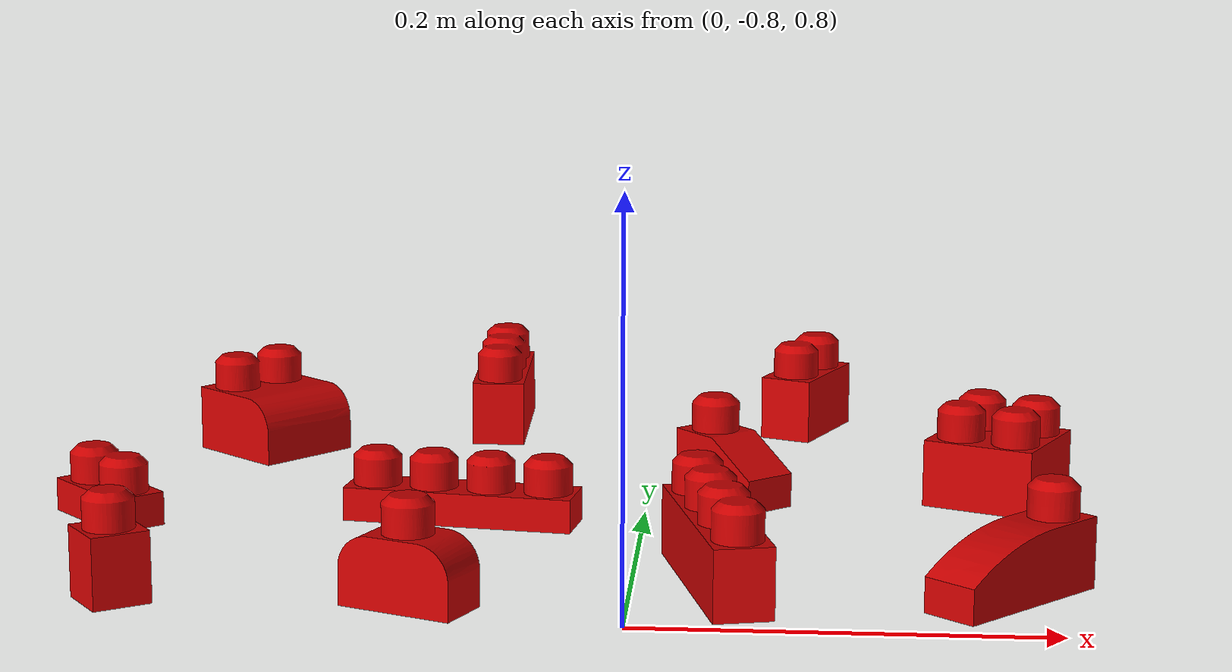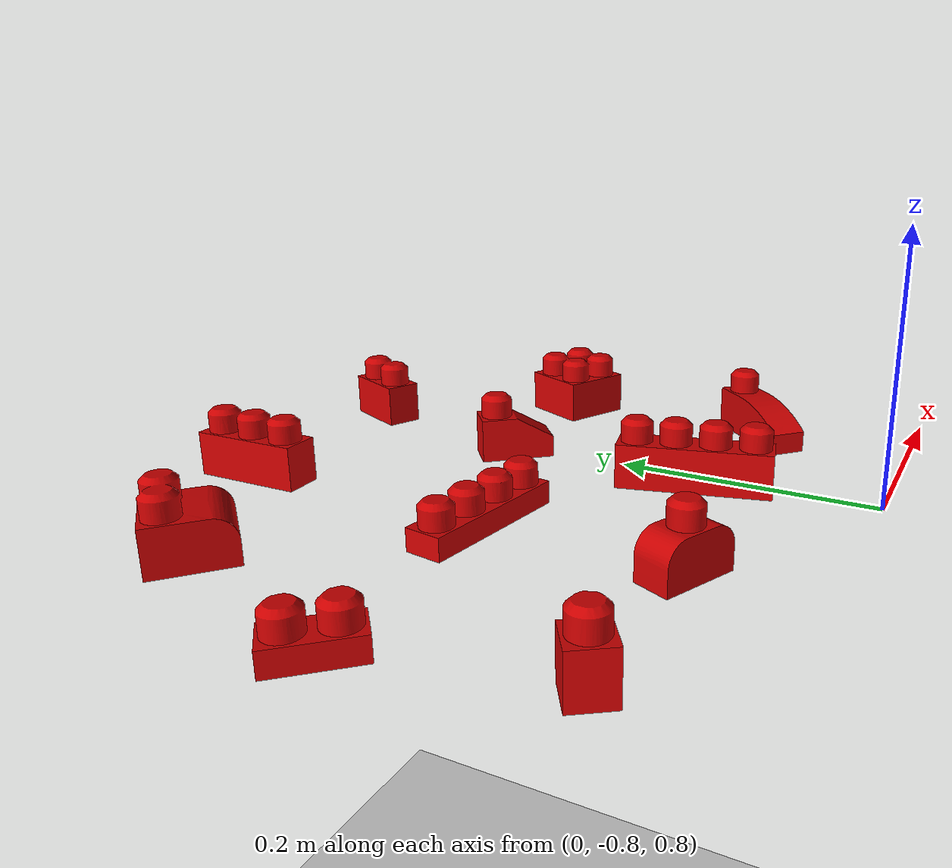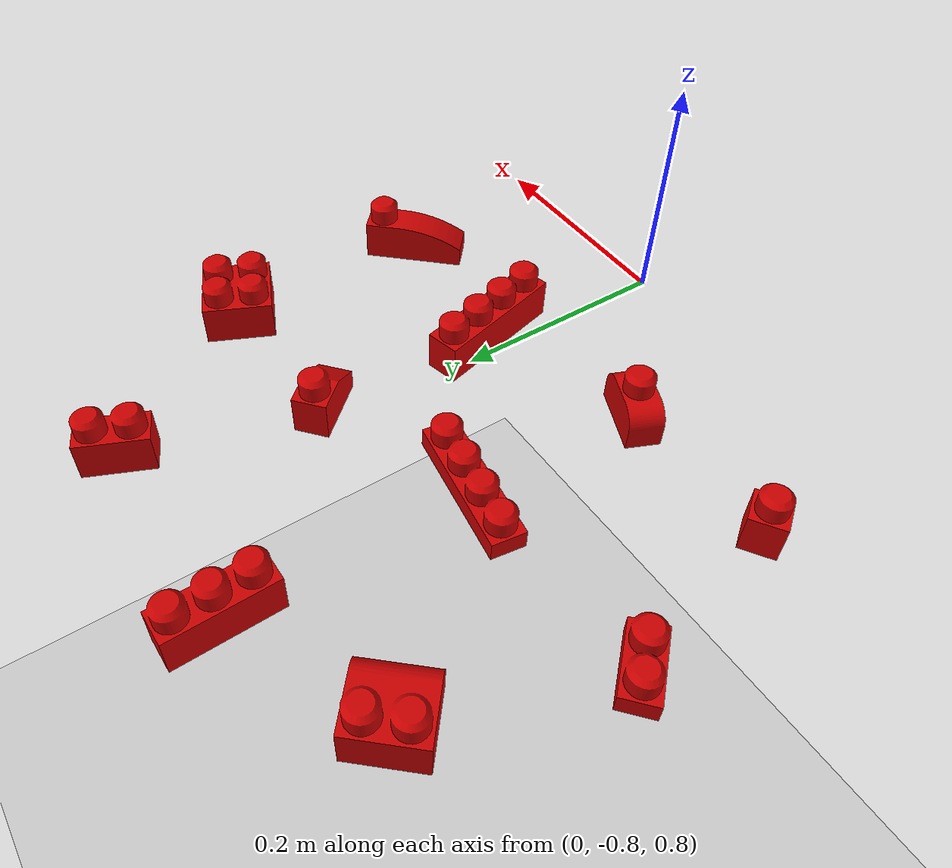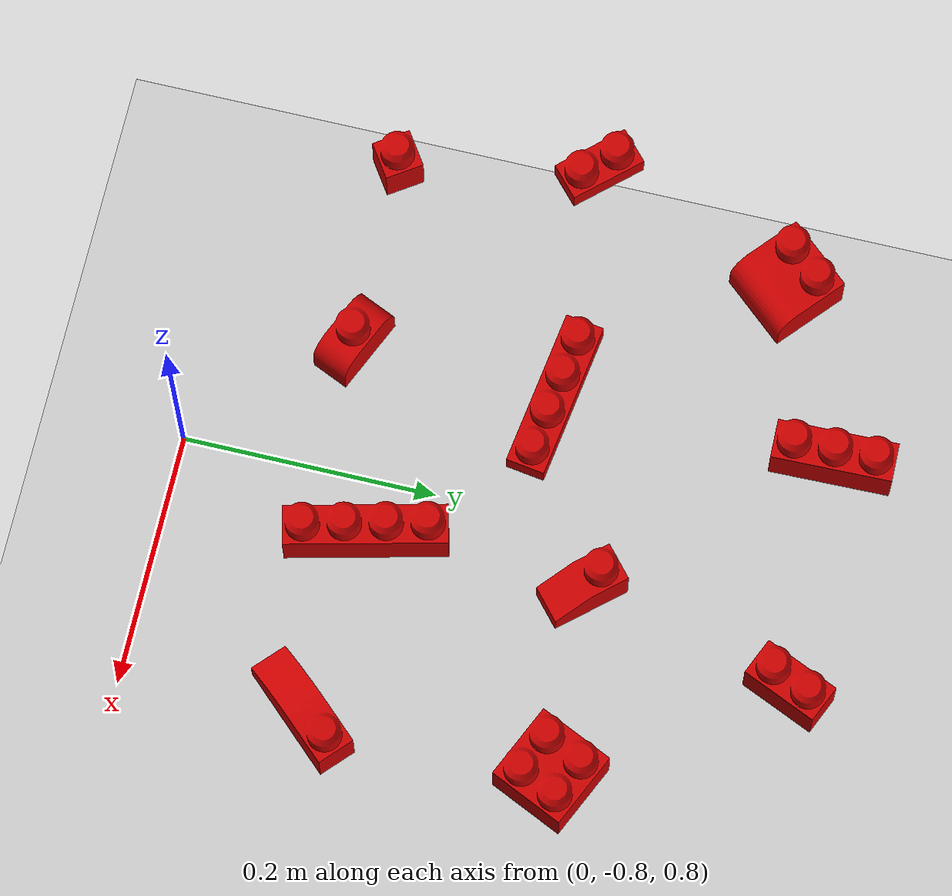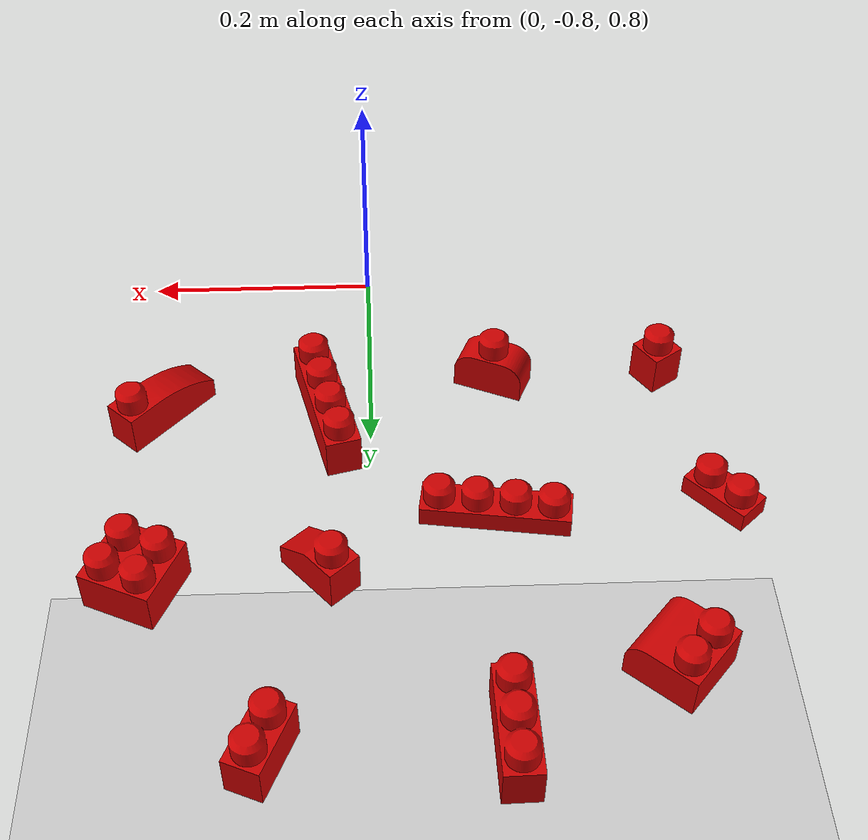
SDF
<sdf version="1.7">
 <world name="base">
  <plugin name="ros_link_attacher_plugin" filename="libgazebo_ros_link_attacher.so"/>
  <gravity>0 0 -9.81</gravity>
  <physics name="default_physics" default="0" type="ode">
   <max_step_size>0.001</max_step_size>
   <real_time_factor>1</real_time_factor>
   <real_time_update_rate>1000</real_time_update_rate>
  </physics>
  <scene><ambient>0.4 0.4 0.4 1</ambient><background>0.7 0.7 0.7 1</background><shadows>1</shadows></scene>
  <light name="sun" type="directional">
   <cast_shadows>0</cast_shadows>
   <pose>0 0 10 0 -0 0</pose>
   <diffuse>0.8 0.8 0.8 1</diffuse>
   <specular>0.2 0.2 0.2 1</specular>
   <attenuation>
    <range>1000</range>
    <constant>0.9</constant>
    <linear>0.01</linear>
    <quadratic>0.001</quadratic>
   </attenuation>
   <direction>-0.5 0.1 -0.9</direction>
   <spot><inner_angle>0</inner_angle><outer_angle>0</outer_angle><falloff>0</falloff></spot>
  </light>
  <model name="ground_plane">
   <static>1</static>
   <link name="link">
    <collision name="collision">
     <geometry><plane><normal>0 0 1</normal><size>100 100</size></plane></geometry>
     <surface>
      <contact><collide_bitmask>65535</collide_bitmask></contact>
      <friction><ode><mu>100</mu><mu2>50</mu2></ode></friction>
     </surface>
    </collision>
    <visual name="visual">
     <cast_shadows>0</cast_shadows>
     <geometry><plane><normal>0 0 1</normal><size>100 100</size></plane></geometry>
     <material>
      <script><uri>file://media/materials/scripts/gazebo.material</uri><name>Gazebo/Grey</name></script>
     </material>
    </visual>
   </link>
  </model>
  <model name="lego_X1-Y2-Z2-CHAMFER">
   <link name="link">
    <inertial>
     <pose>3e-06 0.004887 -0.003924 0 -0 0</pose>
     <mass>0.118122</mass>
     <inertia>
      <ixx>7.11254e-05</ixx>
      <ixy>-2.81765e-09</ixy>
      <ixz>-6.76974e-09</ixz>
      <iyy>4.35864e-05</iyy>
      <iyz>-1.07802e-05</iyz>
      <izz>5.92481e-05</izz>
     </inertia>
    </inertial>
    <collision name="collision">
     <geometry>
      <mesh><scale>1 1 1</scale><uri>model://lego_X1-Y2-Z2-CHAMFER/meshes/X1-Y2-Z2-CHAMFER.stl</uri></mesh>
     </geometry>
     <surface>
      <contact><ode><max_vel>0.01</max_vel><min_depth>0</min_depth><mu>0.1</mu><mu2>0.1</mu2></ode></contact>
      <bounce><restitution_coefficient>0</restitution_coefficient><threshold>1e+06</threshold></bounce>
     </surface>
    </collision>
    <visual name="visual">
     <geometry>
      <mesh><scale>1 1 1</scale><uri>model://lego_X1-Y2-Z2-CHAMFER/meshes/X1-Y2-Z2-CHAMFER.stl</uri></mesh>
     </geometry>
     <material>
      <script><uri>file://media/materials/scripts/gazebo.material</uri><name>Gazebo/Grey</name></script>
      <shader type="vertex"><normal_map>__default__</normal_map></shader>
      <ambient>0.8 0 0 1</ambient>
      <diffuse>0.7 0.7 0.7 1</diffuse>
      <specular>0.01 0.01 0.01 1</specular>
      <emissive>0 0 0 1</emissive>
     </material>
    </visual>
   </link>
   <pose>0.042805 -0.474774 0.8035 4.3e-05 3.4e-05 0.7188</pose>
  </model>
  <model name="lego_X1-Y2-Z2">
   <link name="link">
    <inertial>
     <pose>1e-06 7e-06 0.000398 0 -0 0</pose>
     <mass>0.146868</mass>
     <inertia>
      <ixx>0.000100644</ixx>
      <ixy>-2.20574e-09</ixy>
      <ixz>6.78532e-10</ixz>
      <iyy>5.89081e-05</iyy>
      <iyz>-2.30188e-08</iyz>
      <izz>7.98702e-05</izz>
     </inertia>
    </inertial>
    <collision name="collision">
     <geometry><mesh><scale>1 1 1</scale><uri>model://lego_X1-Y2-Z2/meshes/X1-Y2-Z2.stl</uri></mesh></geometry>
     <surface>
      <contact><ode><max_vel>0.01</max_vel><min_depth>0</min_depth><mu>0.1</mu><mu2>0.1</mu2></ode></contact>
      <bounce><restitution_coefficient>0</restitution_coefficient><threshold>1e+06</threshold></bounce>
     </surface>
    </collision>
    <visual name="visual">
     <geometry><mesh><scale>1 1 1</scale><uri>model://lego_X1-Y2-Z2/meshes/X1-Y2-Z2.stl</uri></mesh></geometry>
     <material>
      <script><uri>file://media/materials/scripts/gazebo.material</uri><name>Gazebo/Grey</name></script>
      <shader type="vertex"><normal_map>__default__</normal_map></shader>
      <ambient>0.8 0 0 1</ambient>
      <diffuse>0.7 0.7 0.7 1</diffuse>
      <specular>0.01 0.01 0.01 1</specular>
      <emissive>0 0 0 1</emissive>
     </material>
    </visual>
   </link>
   <pose>0.083353 -0.303881 0.803496 -0.000123 -5.2e-05 -0.409418</pose>
  </model>
  <model name="lego_X1-Y2-Z1">
   <link name="link">
    <inertial>
     <pose>-2e-06 -1.3e-05 7.6e-05 0 -0 0</pose>
     <mass>0.0996487</mass>
     <inertia>
      <ixx>5.10576e-05</ixx>
      <ixy>-2.19745e-09</ixy>
      <ixz>5.98298e-09</ixz>
      <iyy>2.36483e-05</iyy>
      <iyz>1.68164e-08</iyz>
      <izz>5.02663e-05</izz>
     </inertia>
    </inertial>
    <collision name="collision">
     <geometry><mesh><scale>1 1 1</scale><uri>model://lego_X1-Y2-Z1/meshes/X1-Y2-Z1.stl</uri></mesh></geometry>
     <surface>
      <contact><ode><max_vel>0.01</max_vel><min_depth>0</min_depth><mu>0.1</mu><mu2>0.1</mu2></ode></contact>
      <bounce><restitution_coefficient>0</restitution_coefficient><threshold>1e+06</threshold></bounce>
     </surface>
    </collision>
    <visual name="visual">
     <geometry><mesh><scale>1 1 1</scale><uri>model://lego_X1-Y2-Z1/meshes/X1-Y2-Z1.stl</uri></mesh></geometry>
     <material>
      <script><uri>file://media/materials/scripts/gazebo.material</uri><name>Gazebo/Grey</name></script>
      <shader type="vertex"><normal_map>__default__</normal_map></shader>
      <ambient>0.8 0 0 1</ambient>
      <diffuse>0.7 0.7 0.7 1</diffuse>
      <specular>0.01 0.01 0.01 1</specular>
      <emissive>0 0 0 1</emissive>
     </material>
    </visual>
   </link>
   <pose>-0.297245 -0.539917 0.794 -2e-06 -8e-06 0.740077</pose>
  </model>
  <model name="lego_X1-Y1-Z2">
   <link name="link">
    <inertial>
     <pose>2e-06 -0 -0.000475 0 -0 0</pose>
     <mass>0.0802771</mass>
     <inertia>
      <ixx>3.14179e-05</ixx>
      <ixy>-2.69251e-09</ixy>
      <ixz>-4.52438e-09</ixz>
      <iyy>3.14364e-05</iyy>
      <iyz>3.14783e-09</iyz>
      <izz>1.98462e-05</izz>
     </inertia>
    </inertial>
    <collision name="collision">
     <geometry><mesh><scale>1 1 1</scale><uri>model://lego_X1-Y1-Z2/meshes/X1-Y1-Z2.stl</uri></mesh></geometry>
     <surface>
      <contact><ode><max_vel>0.01</max_vel><min_depth>0</min_depth><mu>0.1</mu><mu2>0.1</mu2></ode></contact>
      <bounce><restitution_coefficient>0</restitution_coefficient><threshold>1e+06</threshold></bounce>
     </surface>
    </collision>
    <visual name="visual">
     <geometry><mesh><scale>1 1 1</scale><uri>model://lego_X1-Y1-Z2/meshes/X1-Y1-Z2.stl</uri></mesh></geometry>
     <material>
      <script><uri>file://media/materials/scripts/gazebo.material</uri><name>Gazebo/Grey</name></script>
      <shader type="vertex"><normal_map>__default__</normal_map></shader>
      <ambient>0.8 0 0 1</ambient>
      <diffuse>0.7 0.7 0.7 1</diffuse>
      <specular>0.01 0.01 0.01 1</specular>
      <emissive>0 0 0 1</emissive>
     </material>
    </visual>
   </link>
   <pose>-0.261149 -0.693889 0.803499 0.000119 -3.3e-05 2.16981</pose>
  </model>
  <model name="lego_X1-Y3-Z2">
   <link name="link">
    <inertial>
     <pose>1e-06 1e-06 0.000653 0 -0 0</pose>
     <mass>0.212844</mass>
     <inertia>
      <ixx>0.000243994</ixx>
      <ixy>-2.47623e-10</ixy>
      <ixz>-4.81047e-09</ixz>
      <iyy>8.5861e-05</iyy>
      <iyz>-7.44265e-09</iyz>
      <izz>0.000214469</izz>
     </inertia>
    </inertial>
    <collision name="collision">
     <geometry><mesh><scale>1 1 1</scale><uri>model://lego_X1-Y3-Z2/meshes/X1-Y3-Z2.stl</uri></mesh></geometry>
     <surface>
      <contact><ode><max_vel>0.01</max_vel><min_depth>0</min_depth><mu>0.1</mu><mu2>0.1</mu2></ode></contact>
      <bounce><restitution_coefficient>0</restitution_coefficient><threshold>1e+06</threshold></bounce>
     </surface>
    </collision>
    <visual name="visual">
     <geometry><mesh><scale>1 1 1</scale><uri>model://lego_X1-Y3-Z2/meshes/X1-Y3-Z2.stl</uri></mesh></geometry>
     <material>
      <script><uri>file://media/materials/scripts/gazebo.material</uri><name>Gazebo/Grey</name></script>
      <shader type="vertex"><normal_map>__default__</normal_map></shader>
      <ambient>0.8 0 0 1</ambient>
      <diffuse>0.7 0.7 0.7 1</diffuse>
      <specular>0.01 0.01 0.01 1</specular>
      <emissive>0 0 0 1</emissive>
     </material>
    </visual>
   </link>
   <pose>-0.102676 -0.309741 0.803501 0 3.3e-05 0.020941</pose>
  </model>
  <model name="lego_X1-Y2-Z2-TWINFILLET">
   <link name="link">
    <inertial>
     <pose>0 1.9e-05 -0.002838 0 -0 0</pose>
     <mass>0.111151</mass>
     <inertia>
      <ixx>6.93062e-05</ixx>
      <ixy>-2.50799e-09</ixy>
      <ixz>-1.36591e-09</ixz>
      <iyy>4.25369e-05</iyy>
      <iyz>1.22292e-08</iyz>
      <izz>5.86714e-05</izz>
     </inertia>
    </inertial>
    <collision name="collision">
     <geometry>
      <mesh><scale>1 1 1</scale><uri>model://lego_X1-Y2-Z2-TWINFILLET/meshes/X1-Y2-Z2-TWINFILLET.stl</uri></mesh>
     </geometry>
     <surface>
      <contact><ode><max_vel>0.01</max_vel><min_depth>0</min_depth><mu>0.1</mu><mu2>0.1</mu2></ode></contact>
      <bounce><restitution_coefficient>0</restitution_coefficient><threshold>1e+06</threshold></bounce>
     </surface>
    </collision>
    <visual name="visual">
     <geometry>
      <mesh><scale>1 1 1</scale><uri>model://lego_X1-Y2-Z2-TWINFILLET/meshes/X1-Y2-Z2-TWINFILLET.stl</uri></mesh>
     </geometry>
     <material>
      <script><uri>file://media/materials/scripts/gazebo.material</uri><name>Gazebo/Grey</name></script>
      <shader type="vertex"><normal_map>__default__</normal_map></shader>
      <ambient>0.8 0 0 1</ambient>
      <diffuse>0.7 0.7 0.7 1</diffuse>
      <specular>0.01 0.01 0.01 1</specular>
      <emissive>0 0 0 1</emissive>
     </material>
    </visual>
   </link>
   <pose>-0.1121 -0.6928 0.8035 2e-06 -3.3e-05 1.15768</pose>
  </model>
  <model name="lego_X2-Y2-Z2">
   <link name="link">
    <inertial>
     <pose>4.1e-05 4e-06 0.001614 0 -0 0</pose>
     <mass>0.26561</mass>
     <inertia>
      <ixx>0.000186213</ixx>
      <ixy>-8.50865e-09</ixy>
      <ixz>-2.27639e-07</ixz>
      <iyy>0.000186146</iyy>
      <iyz>-2.7788e-08</iyz>
      <izz>0.000226537</izz>
     </inertia>
    </inertial>
    <collision name="collision">
     <geometry><mesh><scale>1 1 1</scale><uri>model://lego_X2-Y2-Z2/meshes/X2-Y2-Z2.stl</uri></mesh></geometry>
     <surface>
      <contact><ode><max_vel>0.01</max_vel><min_depth>0</min_depth><mu>0.1</mu><mu2>0.1</mu2></ode></contact>
      <bounce><restitution_coefficient>0</restitution_coefficient><threshold>1e+06</threshold></bounce>
     </surface>
    </collision>
    <visual name="visual">
     <geometry><mesh><scale>1 1 1</scale><uri>model://lego_X2-Y2-Z2/meshes/X2-Y2-Z2.stl</uri></mesh></geometry>
     <material>
      <script><uri>file://media/materials/scripts/gazebo.material</uri><name>Gazebo/Grey</name></script>
      <shader type="vertex"><normal_map>__default__</normal_map></shader>
      <ambient>0.8 0 0 1</ambient>
      <diffuse>0.7 0.7 0.7 1</diffuse>
      <specular>0.01 0.01 0.01 1</specular>
      <emissive>0 0 0 1</emissive>
     </material>
    </visual>
   </link>
   <pose>0.189938 -0.464822 0.803499 -2e-05 -4.8e-05 -0.42664</pose>
  </model>
  <model name="lego_X1-Y3-Z2-FILLET">
   <link name="link">
    <inertial>
     <pose>2e-06 0.006712 -0.00494 0 -0 0</pose>
     <mass>0.16417</mass>
     <inertia>
      <ixx>0.0001698</ixx>
      <ixy>-4.53905e-09</ixy>
      <ixz>-5.1453e-09</ixz>
      <iyy>5.7313e-05</iyy>
      <iyz>-2.27372e-05</iyz>
      <izz>0.000158652</izz>
     </inertia>
    </inertial>
    <collision name="collision">
     <geometry>
      <mesh><scale>1 1 1</scale><uri>model://lego_X1-Y3-Z2-FILLET/meshes/X1-Y3-Z2-FILLET.stl</uri></mesh>
     </geometry>
     <surface>
      <contact><ode><max_vel>0.01</max_vel><min_depth>0</min_depth><mu>0.1</mu><mu2>0.1</mu2></ode></contact>
      <bounce><restitution_coefficient>0</restitution_coefficient><threshold>1e+06</threshold></bounce>
     </surface>
    </collision>
    <visual name="visual">
     <geometry>
      <mesh><scale>1 1 1</scale><uri>model://lego_X1-Y3-Z2-FILLET/meshes/X1-Y3-Z2-FILLET.stl</uri></mesh>
     </geometry>
     <material>
      <script><uri>file://media/materials/scripts/gazebo.material</uri><name>Gazebo/Grey</name></script>
      <shader type="vertex"><normal_map>__default__</normal_map></shader>
      <ambient>0.8 0 0 1</ambient>
      <diffuse>0.7 0.7 0.7 1</diffuse>
      <specular>0.01 0.01 0.01 1</specular>
      <emissive>0 0 0 1</emissive>
     </material>
    </visual>
   </link>
   <pose>0.184732 -0.659752 0.803498 4.2e-05 6.9e-05 -0.745487</pose>
  </model>
  <model name="lego_X1-Y4-Z1">
   <link name="link">
    <inertial>
     <pose>5e-06 -0.000117 0.000294 0 -0 0</pose>
     <mass>0.193201</mass>
     <inertia>
      <ixx>0.000304644</ixx>
      <ixy>-8.18831e-09</ixy>
      <ixz>-1.25295e-08</ixz>
      <iyy>4.59847e-05</iyy>
      <iyz>-3.16651e-07</iyz>
      <izz>0.000303698</izz>
     </inertia>
    </inertial>
    <collision name="collision">
     <geometry><mesh><scale>1 1 1</scale><uri>model://lego_X1-Y4-Z1/meshes/X1-Y4-Z1.stl</uri></mesh></geometry>
     <surface>
      <contact><ode><max_vel>0.01</max_vel><min_depth>0</min_depth><mu>0.1</mu><mu2>0.1</mu2></ode></contact>
      <bounce><restitution_coefficient>0</restitution_coefficient><threshold>1e+06</threshold></bounce>
     </surface>
    </collision>
    <visual name="visual">
     <geometry><mesh><scale>1 1 1</scale><uri>model://lego_X1-Y4-Z1/meshes/X1-Y4-Z1.stl</uri></mesh></geometry>
     <material>
      <script><uri>file://media/materials/scripts/gazebo.material</uri><name>Gazebo/Grey</name></script>
      <shader type="vertex"><normal_map>__default__</normal_map></shader>
      <ambient>0.8 0 0 1</ambient>
      <diffuse>0.7 0.7 0.7 1</diffuse>
      <specular>0.01 0.01 0.01 1</specular>
      <emissive>0 0 0 1</emissive>
     </material>
    </visual>
   </link>
   <pose>-0.103682 -0.530354 0.793999 1.3e-05 3.7e-05 -1.71585</pose>
  </model>
  <model name="lego_X1-Y4-Z2">
   <link name="link">
    <inertial>
     <pose>0 -0.000187 0.000748 0 -0 0</pose>
     <mass>0.28148</mass>
     <inertia>
      <ixx>0.000498507</ixx>
      <ixy>-7.16149e-08</ixy>
      <ixz>-9.85412e-10</ixz>
      <iyy>0.000113728</iyy>
      <iyz>-5.87586e-07</iyz>
      <izz>0.000459655</izz>
     </inertia>
    </inertial>
    <collision name="collision">
     <geometry><mesh><scale>1 1 1</scale><uri>model://lego_X1-Y4-Z2/meshes/X1-Y4-Z2.stl</uri></mesh></geometry>
     <surface>
      <contact><ode><max_vel>0.01</max_vel><min_depth>0</min_depth><mu>0.1</mu><mu2>0.1</mu2></ode></contact>
      <bounce><restitution_coefficient>0</restitution_coefficient><threshold>1e+06</threshold></bounce>
     </surface>
    </collision>
    <visual name="visual">
     <geometry><mesh><scale>1 1 1</scale><uri>model://lego_X1-Y4-Z2/meshes/X1-Y4-Z2.stl</uri></mesh></geometry>
     <material>
      <script><uri>file://media/materials/scripts/gazebo.material</uri><name>Gazebo/Grey</name></script>
      <shader type="vertex"><normal_map>__default__</normal_map></shader>
      <ambient>0.8 0 0 1</ambient>
      <diffuse>0.7 0.7 0.7 1</diffuse>
      <specular>0.01 0.01 0.01 1</specular>
      <emissive>0 0 0 1</emissive>
     </material>
    </visual>
   </link>
   <pose>0.038172 -0.646216 0.803498 5.1e-05 -8.3e-05 -2.90041</pose>
  </model>
  <model name="lego_X2-Y2-Z2-FILLET">
   <link name="link">
    <inertial>
     <pose>5.3e-05 0.003572 -0.002006 0 -0 0</pose>
     <mass>0.223517</mass>
     <inertia>
      <ixx>0.000143889</ixx>
      <ixy>2.27232e-09</ixy>
      <ixz>-2.04669e-07</ixz>
      <iyy>0.000151725</iyy>
      <iyz>-1.62924e-05</iyz>
      <izz>0.00018931</izz>
     </inertia>
    </inertial>
    <collision name="collision">
     <geometry>
      <mesh><scale>1 1 1</scale><uri>model://lego_X2-Y2-Z2-FILLET/meshes/X2-Y2-Z2-FILLET.stl</uri></mesh>
     </geometry>
     <surface>
      <contact><ode><max_vel>0.01</max_vel><min_depth>0</min_depth><mu>0.1</mu><mu2>0.1</mu2></ode></contact>
      <bounce><restitution_coefficient>0</restitution_coefficient><threshold>1e+06</threshold></bounce>
     </surface>
    </collision>
    <visual name="visual">
     <geometry>
      <mesh><scale>1 1 1</scale><uri>model://lego_X2-Y2-Z2-FILLET/meshes/X2-Y2-Z2-FILLET.stl</uri></mesh>
     </geometry>
     <material>
      <script><uri>file://media/materials/scripts/gazebo.material</uri><name>Gazebo/Grey</name></script>
      <shader type="vertex"><normal_map>__default__</normal_map></shader>
      <ambient>0.8 0 0 1</ambient>
      <diffuse>0.7 0.7 0.7 1</diffuse>
      <specular>0.01 0.01 0.01 1</specular>
      <emissive>0 0 0 1</emissive>
     </material>
    </visual>
   </link>
   <pose>-0.233963 -0.375541 0.8035 5e-06 -1e-06 0.852822</pose>
  </model>
 </world>
</sdf>
